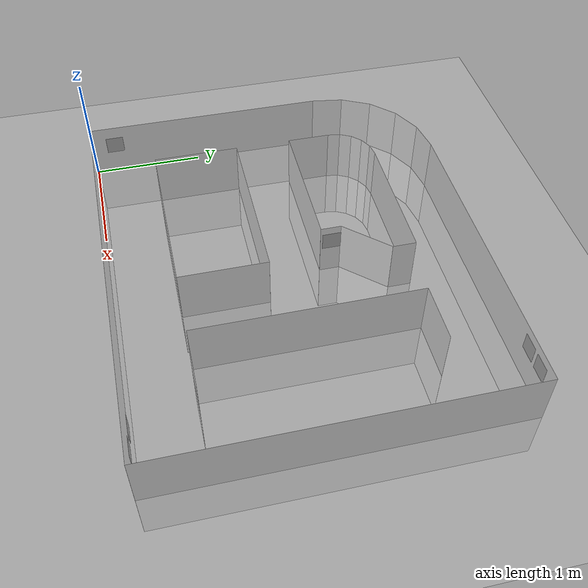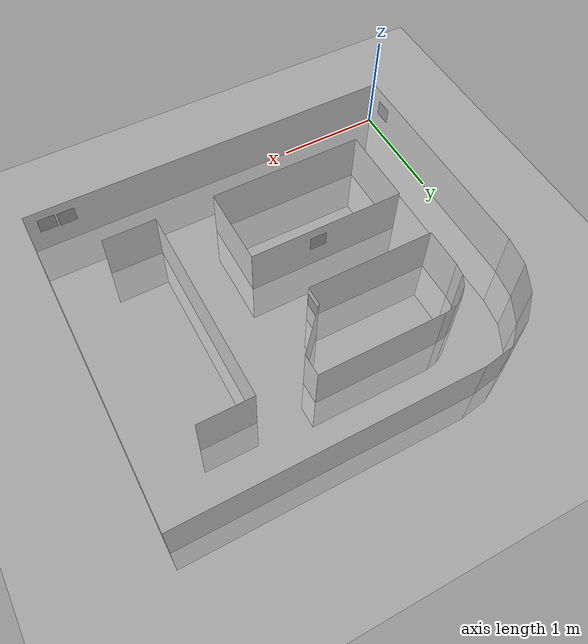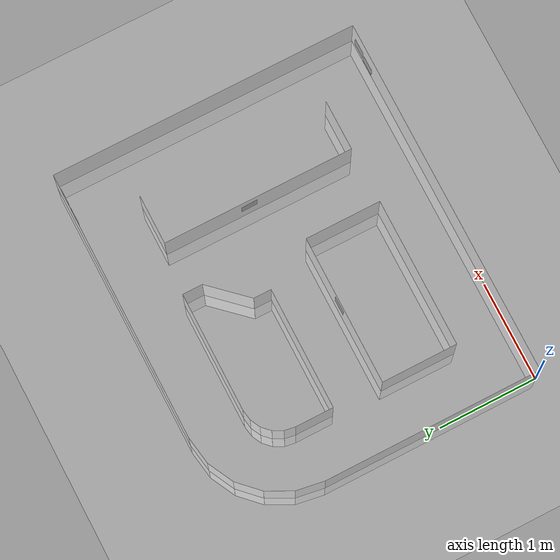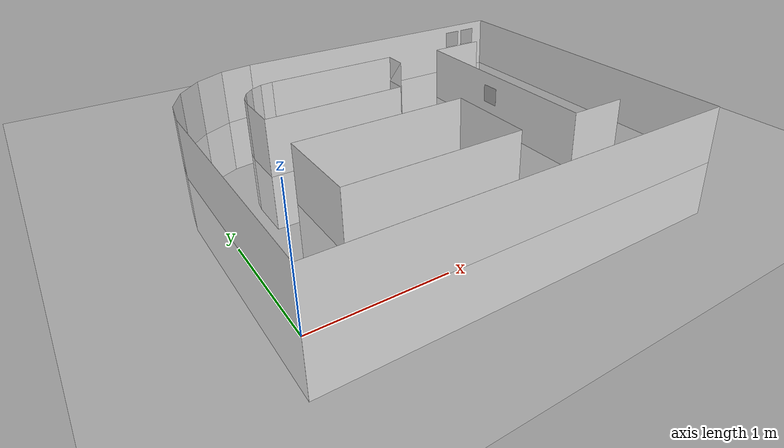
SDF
<sdf version="1.6">
 <world name="default">
  <light name="sun" type="directional">
   <pose>0 0 10 0 -0 0</pose>
   <diffuse>0.8 0.8 0.8 1</diffuse>
   <specular>0.1 0.1 0.1 1</specular>
   <attenuation>
    <range>1000</range>
    <constant>0.9</constant>
    <linear>0.01</linear>
    <quadratic>0.001</quadratic>
   </attenuation>
   <direction>-0.5 0.5 -1</direction>
  </light>
  <model name="ground_plane">
   <static>1</static>
   <link name="link">
    <collision name="collision">
     <geometry><plane><normal>0 0 1</normal><size>100 100</size></plane></geometry>
     <surface><friction><ode><mu>100</mu><mu2>50</mu2></ode></friction></surface>
    </collision>
    <visual name="visual">
     <cast_shadows>0</cast_shadows>
     <geometry><plane><normal>0 0 1</normal><size>100 100</size></plane></geometry>
     <material>
      <script><uri>file://media/materials/scripts/gazebo.material</uri><name>Gazebo/Grey</name></script>
     </material>
    </visual>
   </link>
  </model>
  <model name="wall_0">
   <static>1</static>
   <link name="link">
    <collision name="collision"><geometry><box><size>2.1936 0.001 1</size></box></geometry></collision>
    <visual name="visual">
     <geometry><box><size>2.1936 0.001 1</size></box></geometry>
     <material>
      <script><name>Gazebo/White</name><uri>file://media/materials/scripts/gazebo.material</uri></script>
     </material>
    </visual>
   </link>
   <pose>0 1.0968 0 0 -0 1.5708</pose>
  </model>
  <model name="wall_1">
   <static>1</static>
   <link name="link">
    <collision name="collision"><geometry><box><size>0.286088 0.001 1</size></box></geometry></collision>
    <visual name="visual">
     <geometry><box><size>0.286088 0.001 1</size></box></geometry>
     <material>
      <script><name>Gazebo/White</name><uri>file://media/materials/scripts/gazebo.material</uri></script>
     </material>
    </visual>
   </link>
   <pose>0.022377 2.33489 0 0 -0 1.41372</pose>
  </model>
  <model name="wall_2">
   <static>1</static>
   <link name="link">
    <collision name="collision"><geometry><box><size>0.286088 0.001 1</size></box></geometry></collision>
    <visual name="visual">
     <geometry><box><size>0.286088 0.001 1</size></box></geometry>
     <material>
      <script><name>Gazebo/White</name><uri>file://media/materials/scripts/gazebo.material</uri></script>
     </material>
    </visual>
   </link>
   <pose>0.109695 2.60362 0 0 -0 1.09956</pose>
  </model>
  <model name="wall_3">
   <static>1</static>
   <link name="link">
    <collision name="collision"><geometry><box><size>0.286088 0.001 1</size></box></geometry></collision>
    <visual name="visual">
     <geometry><box><size>0.286088 0.001 1</size></box></geometry>
     <material>
      <script><name>Gazebo/White</name><uri>file://media/materials/scripts/gazebo.material</uri></script>
     </material>
    </visual>
   </link>
   <pose>0.275783 2.83222 0 0 -0 0.785398</pose>
  </model>
  <model name="wall_4">
   <static>1</static>
   <link name="link">
    <collision name="collision"><geometry><box><size>0.286088 0.001 1</size></box></geometry></collision>
    <visual name="visual">
     <geometry><box><size>0.286088 0.001 1</size></box></geometry>
     <material>
      <script><name>Gazebo/White</name><uri>file://media/materials/scripts/gazebo.material</uri></script>
     </material>
    </visual>
   </link>
   <pose>0.504383 2.99831 0 0 -0 0.471239</pose>
  </model>
  <model name="wall_5">
   <static>1</static>
   <link name="link">
    <collision name="collision"><geometry><box><size>0.286088 0.001 1</size></box></geometry></collision>
    <visual name="visual">
     <geometry><box><size>0.286088 0.001 1</size></box></geometry>
     <material>
      <script><name>Gazebo/White</name><uri>file://media/materials/scripts/gazebo.material</uri></script>
     </material>
    </visual>
   </link>
   <pose>0.773119 3.08563 0 0 -0 0.15708</pose>
  </model>
  <model name="wall_6">
   <static>1</static>
   <link name="link">
    <collision name="collision"><geometry><box><size>2.74321 0.001 1</size></box></geometry></collision>
    <visual name="visual">
     <geometry><box><size>2.74321 0.001 1</size></box></geometry>
     <material>
      <script><name>Gazebo/White</name><uri>file://media/materials/scripts/gazebo.material</uri></script>
     </material>
    </visual>
   </link>
   <pose>2.286 3.10801 0 0 -0 0</pose>
  </model>
  <model name="wall_7">
   <static>1</static>
   <link name="link">
    <collision name="collision"><geometry><box><size>3.10801 0.001 1</size></box></geometry></collision>
    <visual name="visual">
     <geometry><box><size>3.10801 0.001 1</size></box></geometry>
     <material>
      <script><name>Gazebo/White</name><uri>file://media/materials/scripts/gazebo.material</uri></script>
     </material>
    </visual>
   </link>
   <pose>3.65761 1.554 0 0 0 -1.5708</pose>
  </model>
  <model name="wall_8">
   <static>1</static>
   <link name="link">
    <collision name="collision"><geometry><box><size>3.65761 0.001 1</size></box></geometry></collision>
    <visual name="visual">
     <geometry><box><size>3.65761 0.001 1</size></box></geometry>
     <material>
      <script><name>Gazebo/White</name><uri>file://media/materials/scripts/gazebo.material</uri></script>
     </material>
    </visual>
   </link>
   <pose>1.8288 0 0 0 0 -3.14159</pose>
  </model>
  <model name="wall_9">
   <static>1</static>
   <link name="link">
    <collision name="collision"><geometry><box><size>0.762002 0.001 1</size></box></geometry></collision>
    <visual name="visual">
     <geometry><box><size>0.762002 0.001 1</size></box></geometry>
     <material>
      <script><name>Gazebo/White</name><uri>file://media/materials/scripts/gazebo.material</uri></script>
     </material>
    </visual>
   </link>
   <pose>0.558801 0.939802 0 0 -0 1.5708</pose>
  </model>
  <model name="wall_10">
   <static>1</static>
   <link name="link">
    <collision name="collision"><geometry><box><size>1.4986 0.001 1</size></box></geometry></collision>
    <visual name="visual">
     <geometry><box><size>1.4986 0.001 1</size></box></geometry>
     <material>
      <script><name>Gazebo/White</name><uri>file://media/materials/scripts/gazebo.material</uri></script>
     </material>
    </visual>
   </link>
   <pose>1.3081 1.3208 0 0 -0 0</pose>
  </model>
  <model name="wall_11">
   <static>1</static>
   <link name="link">
    <collision name="collision"><geometry><box><size>0.762002 0.001 1</size></box></geometry></collision>
    <visual name="visual">
     <geometry><box><size>0.762002 0.001 1</size></box></geometry>
     <material>
      <script><name>Gazebo/White</name><uri>file://media/materials/scripts/gazebo.material</uri></script>
     </material>
    </visual>
   </link>
   <pose>2.0574 0.939802 0 0 0 -1.5708</pose>
  </model>
  <model name="wall_12">
   <static>1</static>
   <link name="link">
    <collision name="collision"><geometry><box><size>1.4986 0.001 1</size></box></geometry></collision>
    <visual name="visual">
     <geometry><box><size>1.4986 0.001 1</size></box></geometry>
     <material>
      <script><name>Gazebo/White</name><uri>file://media/materials/scripts/gazebo.material</uri></script>
     </material>
    </visual>
   </link>
   <pose>1.3081 0.558801 0 0 0 -3.14159</pose>
  </model>
  <model name="wall_13">
   <static>1</static>
   <link name="link">
    <collision name="collision"><geometry><box><size>0.381001 0.001 1</size></box></geometry></collision>
    <visual name="visual">
     <geometry><box><size>0.381001 0.001 1</size></box></geometry>
     <material>
      <script><name>Gazebo/White</name><uri>file://media/materials/scripts/gazebo.material</uri></script>
     </material>
    </visual>
   </link>
   <pose>0.558801 2.0131 0 0 -0 1.5708</pose>
  </model>
  <model name="wall_14">
   <static>1</static>
   <link name="link">
    <collision name="collision"><geometry><box><size>0.111256 0.001 1</size></box></geometry></collision>
    <visual name="visual">
     <geometry><box><size>0.111256 0.001 1</size></box></geometry>
     <material>
      <script><name>Gazebo/White</name><uri>file://media/materials/scripts/gazebo.material</uri></script>
     </material>
    </visual>
   </link>
   <pose>0.567503 2.25855 0 0 -0 1.41372</pose>
  </model>
  <model name="wall_15">
   <static>1</static>
   <link name="link">
    <collision name="collision"><geometry><box><size>0.111256 0.001 1</size></box></geometry></collision>
    <visual name="visual">
     <geometry><box><size>0.111256 0.001 1</size></box></geometry>
     <material>
      <script><name>Gazebo/White</name><uri>file://media/materials/scripts/gazebo.material</uri></script>
     </material>
    </visual>
   </link>
   <pose>0.60146 2.36306 0 0 -0 1.09956</pose>
  </model>
  <model name="wall_16">
   <static>1</static>
   <link name="link">
    <collision name="collision"><geometry><box><size>0.111256 0.001 1</size></box></geometry></collision>
    <visual name="visual">
     <geometry><box><size>0.111256 0.001 1</size></box></geometry>
     <material>
      <script><name>Gazebo/White</name><uri>file://media/materials/scripts/gazebo.material</uri></script>
     </material>
    </visual>
   </link>
   <pose>0.66605 2.45196 0 0 -0 0.785398</pose>
  </model>
  <model name="wall_17">
   <static>1</static>
   <link name="link">
    <collision name="collision"><geometry><box><size>0.111256 0.001 1</size></box></geometry></collision>
    <visual name="visual">
     <geometry><box><size>0.111256 0.001 1</size></box></geometry>
     <material>
      <script><name>Gazebo/White</name><uri>file://media/materials/scripts/gazebo.material</uri></script>
     </material>
    </visual>
   </link>
   <pose>0.75495 2.51655 0 0 -0 0.471239</pose>
  </model>
  <model name="wall_18">
   <static>1</static>
   <link name="link">
    <collision name="collision"><geometry><box><size>0.111256 0.001 1</size></box></geometry></collision>
    <visual name="visual">
     <geometry><box><size>0.111256 0.001 1</size></box></geometry>
     <material>
      <script><name>Gazebo/White</name><uri>file://media/materials/scripts/gazebo.material</uri></script>
     </material>
    </visual>
   </link>
   <pose>0.859458 2.5505 0 0 -0 0.15708</pose>
  </model>
  <model name="wall_19">
   <static>1</static>
   <link name="link">
    <collision name="collision"><geometry><box><size>1.2 0.001 1</size></box></geometry></collision>
    <visual name="visual">
     <geometry><box><size>1.2 0.001 1</size></box></geometry>
     <material>
      <script><name>Gazebo/White</name><uri>file://media/materials/scripts/gazebo.material</uri></script>
     </material>
    </visual>
   </link>
   <pose>1.5144 2.55921 0 0 -0 0</pose>
  </model>
  <model name="wall_20">
   <static>1</static>
   <link name="link">
    <collision name="collision"><geometry><box><size>0.2032 0.001 1</size></box></geometry></collision>
    <visual name="visual">
     <geometry><box><size>0.2032 0.001 1</size></box></geometry>
     <material>
      <script><name>Gazebo/White</name><uri>file://media/materials/scripts/gazebo.material</uri></script>
     </material>
    </visual>
   </link>
   <pose>2.1144 2.45761 0 0 0 -1.5708</pose>
  </model>
  <model name="wall_21">
   <static>1</static>
   <link name="link">
    <collision name="collision"><geometry><box><size>0.485267 0.001 1</size></box></geometry></collision>
    <visual name="visual">
     <geometry><box><size>0.485267 0.001 1</size></box></geometry>
     <material>
      <script><name>Gazebo/White</name><uri>file://media/materials/scripts/gazebo.material</uri></script>
     </material>
    </visual>
   </link>
   <pose>1.9493 2.1782 0 0 0 -2.31917</pose>
  </model>
  <model name="wall_22">
   <static>1</static>
   <link name="link">
    <collision name="collision"><geometry><box><size>0.1778 0.001 1</size></box></geometry></collision>
    <visual name="visual">
     <geometry><box><size>0.1778 0.001 1</size></box></geometry>
     <material>
      <script><name>Gazebo/White</name><uri>file://media/materials/scripts/gazebo.material</uri></script>
     </material>
    </visual>
   </link>
   <pose>1.7842 1.9115 0 0 0 -1.5708</pose>
  </model>
  <model name="wall_23">
   <static>1</static>
   <link name="link">
    <collision name="collision"><geometry><box><size>1.2254 0.001 1</size></box></geometry></collision>
    <visual name="visual">
     <geometry><box><size>1.2254 0.001 1</size></box></geometry>
     <material>
      <script><name>Gazebo/White</name><uri>file://media/materials/scripts/gazebo.material</uri></script>
     </material>
    </visual>
   </link>
   <pose>1.1715 1.8226 0 0 0 -3.14159</pose>
  </model>
  <model name="wall_24">
   <static>1</static>
   <link name="link">
    <collision name="collision"><geometry><box><size>0.508001 0.001 1</size></box></geometry></collision>
    <visual name="visual">
     <geometry><box><size>0.508001 0.001 1</size></box></geometry>
     <material>
      <script><name>Gazebo/White</name><uri>file://media/materials/scripts/gazebo.material</uri></script>
     </material>
    </visual>
   </link>
   <pose>2.87021 2.48921 0 0 -0 0</pose>
  </model>
  <model name="wall_25">
   <static>1</static>
   <link name="link">
    <collision name="collision"><geometry><box><size>0.508001 0.001 1</size></box></geometry></collision>
    <visual name="visual">
     <geometry><box><size>0.508001 0.001 1</size></box></geometry>
     <material>
      <script><name>Gazebo/White</name><uri>file://media/materials/scripts/gazebo.material</uri></script>
     </material>
    </visual>
   </link>
   <pose>2.87021 0.558801 0 0 0 -3.14159</pose>
  </model>
  <model name="wall_26">
   <static>1</static>
   <link name="link">
    <collision name="collision"><geometry><box><size>1.9304 0.001 1</size></box></geometry></collision>
    <visual name="visual">
     <geometry><box><size>1.9304 0.001 1</size></box></geometry>
     <material>
      <script><name>Gazebo/White</name><uri>file://media/materials/scripts/gazebo.material</uri></script>
     </material>
    </visual>
   </link>
   <pose>2.6162 1.524 0 0 -0 1.5708</pose>
  </model>
  <model name="apple">
   <static>1</static>
   <pose>0.006155 0.211788 0.305457 0 -0 1.57715</pose>
   <link name="link">
    <collision name="collision"><geometry><box><size>0.1615 0.001 0.1615</size></box></geometry></collision>
    <visual name="visual">
     <cast_shadows>0</cast_shadows>
     <geometry><box><size>0.1615 0.001 0.1615</size></box></geometry>
     <material>
      <script>
       <uri>model://apple/materials/scripts</uri>
       <uri>model://apple/materials/textures</uri>
       <name>vrc/apple</name>
      </script>
     </material>
    </visual>
   </link>
  </model>
  <model name="banana">
   <pose>2.61211 1.62009 0.301643 0 -0 1.59321</pose>
   <static>1</static>
   <link name="link">
    <collision name="collision"><geometry><box><size>0.1615 0.001 0.1615</size></box></geometry></collision>
    <visual name="visual">
     <cast_shadows>0</cast_shadows>
     <geometry><box><size>0.1615 0.001 0.1615</size></box></geometry>
     <material>
      <script>
       <uri>model://banana/materials/scripts</uri>
       <uri>model://banana/materials/textures</uri>
       <name>vrc/banana</name>
      </script>
     </material>
    </visual>
   </link>
  </model>
  <model name="pizza">
   <pose>1.39327 1.32248 0.307142 0 -0 0</pose>
   <static>1</static>
   <link name="link">
    <collision name="collision"><geometry><box><size>0.1615 0.001 0.1615</size></box></geometry></collision>
    <visual name="visual">
     <cast_shadows>0</cast_shadows>
     <geometry><box><size>0.1615 0.001 0.1615</size></box></geometry>
     <material>
      <script>
       <uri>model://pizza/materials/scripts</uri>
       <uri>model://pizza/materials/textures</uri>
       <name>vrc/pizza</name>
      </script>
     </material>
    </visual>
   </link>
  </model>
  <gravity>0 0 -9.8</gravity>
  <magnetic_field>6e-06 2.3e-05 -4.2e-05</magnetic_field>
  <atmosphere type="adiabatic"/>
  <physics name="default_physics" default="0" type="ode">
   <max_step_size>0.001</max_step_size>
   <real_time_factor>1</real_time_factor>
   <real_time_update_rate>1000</real_time_update_rate>
  </physics>
  <scene><ambient>0.4 0.4 0.4 1</ambient><background>0.7 0.7 0.7 1</background><shadows>1</shadows></scene>
  <spherical_coordinates>
   <surface_model>EARTH_WGS84</surface_model>
   <latitude_deg>0</latitude_deg>
   <longitude_deg>0</longitude_deg>
   <elevation>0</elevation>
   <heading_deg>0</heading_deg>
  </spherical_coordinates>
  <model name="cat">
   <pose>1.79 1.92 0.35 0 -0 1.57</pose>
   <static>1</static>
   <link name="link">
    <collision name="collision"><geometry><box><size>0.1615 0.001 0.1615</size></box></geometry></collision>
    <visual name="visual">
     <cast_shadows>0</cast_shadows>
     <geometry><box><size>0.1615 0.001 0.1615</size></box></geometry>
     <material>
      <script>
       <uri>model://cat/materials/scripts</uri>
       <uri>model://cat/materials/textures</uri>
       <name>vrc/cat</name>
      </script>
     </material>
    </visual>
   </link>
  </model>
  <model name="dog">
   <pose>3.28607 0.036745 0.35 0 -0 0</pose>
   <static>1</static>
   <link name="link">
    <collision name="collision"><geometry><box><size>0.1615 0.001 0.1615</size></box></geometry></collision>
    <visual name="visual">
     <cast_shadows>0</cast_shadows>
     <geometry><box><size>0.1615 0.001 0.1615</size></box></geometry>
     <material>
      <script>
       <uri>model://dog/materials/scripts</uri>
       <uri>model://dog/materials/textures</uri>
       <name>vrc/dog</name>
      </script>
     </material>
    </visual>
   </link>
  </model>
  <model name="cat_0">
   <pose>3.47 0.03 0.35 0 -0 0</pose>
   <static>1</static>
   <link name="link">
    <collision name="collision"><geometry><box><size>0.1615 0.001 0.1615</size></box></geometry></collision>
    <visual name="visual">
     <cast_shadows>0</cast_shadows>
     <geometry><box><size>0.1615 0.001 0.1615</size></box></geometry>
     <material>
      <script>
       <uri>model://cat/materials/scripts</uri>
       <uri>model://cat/materials/textures</uri>
       <name>vrc/cat</name>
      </script>
     </material>
    </visual>
   </link>
  </model>
  <model name="cat_1">
   <pose>3.25 3.1 0.35 0 -0 0</pose>
   <static>1</static>
   <link name="link">
    <collision name="collision"><geometry><box><size>0.1615 0.001 0.1615</size></box></geometry></collision>
    <visual name="visual">
     <cast_shadows>0</cast_shadows>
     <geometry><box><size>0.1615 0.001 0.1615</size></box></geometry>
     <material>
      <script>
       <uri>model://cat/materials/scripts</uri>
       <uri>model://cat/materials/textures</uri>
       <name>vrc/cat</name>
      </script>
     </material>
    </visual>
   </link>
  </model>
  <model name="dog_1">
   <pose>3.45 3.1 0.35 0 -0 0</pose>
   <static>1</static>
   <link name="link">
    <collision name="collision"><geometry><box><size>0.1615 0.001 0.1615</size></box></geometry></collision>
    <visual name="visual">
     <cast_shadows>0</cast_shadows>
     <geometry><box><size>0.1615 0.001 0.1615</size></box></geometry>
     <material>
      <script>
       <uri>model://dog/materials/scripts</uri>
       <uri>model://dog/materials/textures</uri>
       <name>vrc/dog</name>
      </script>
     </material>
    </visual>
   </link>
  </model>
 </world>
</sdf>
